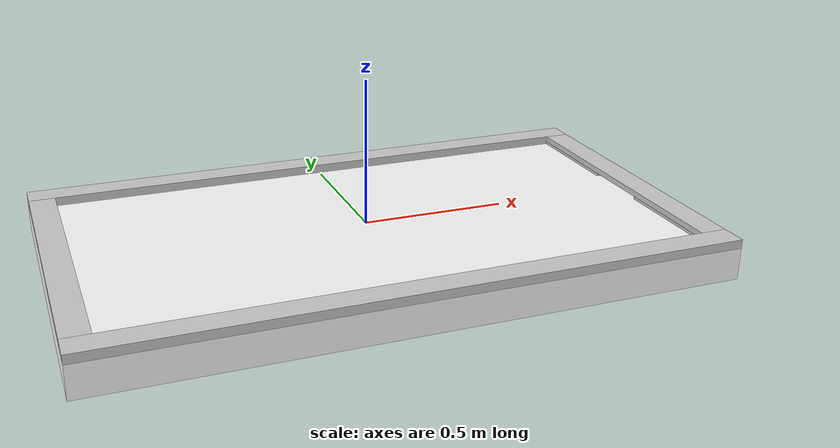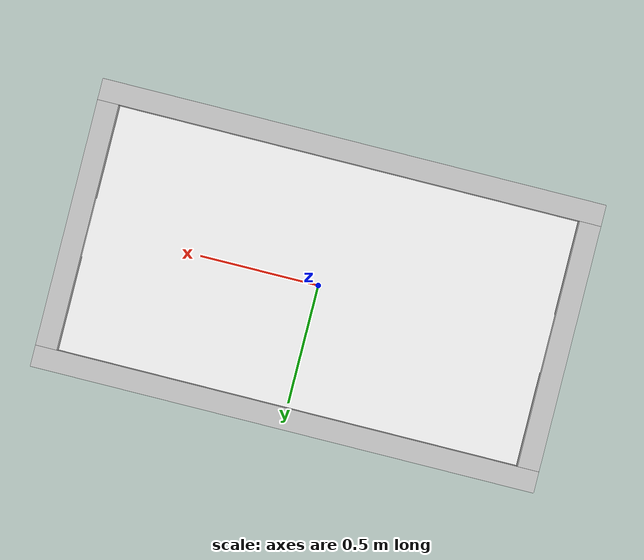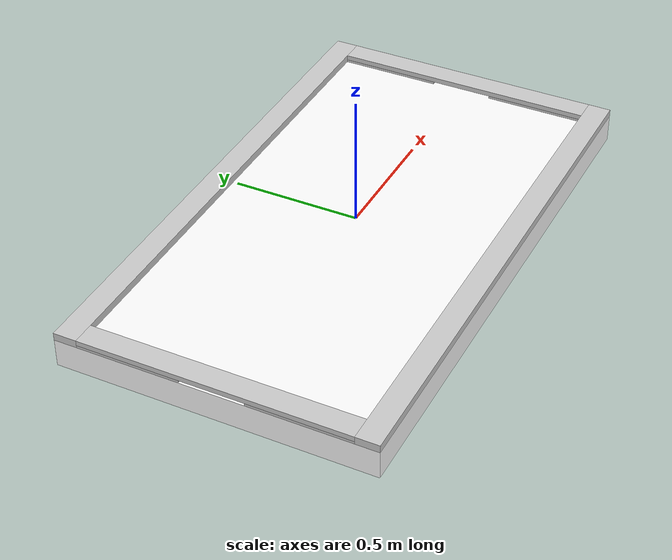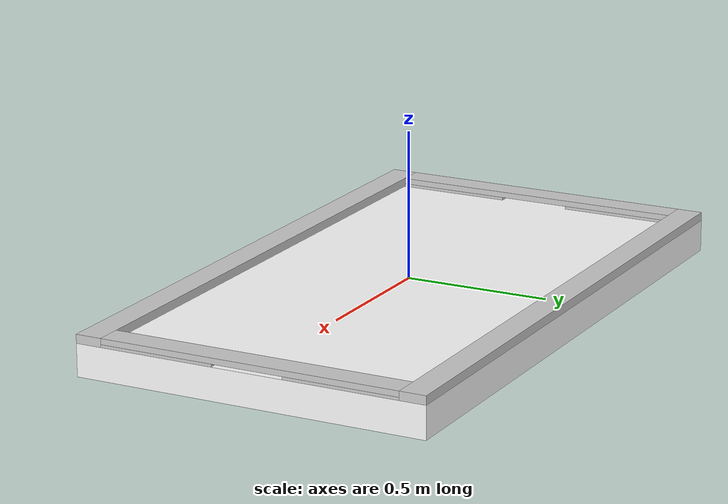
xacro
<?xml version="1.0" encoding="utf-8"?>
<robot name="air_hockey_table" xmlns:xacro="http://www.ros.org/wiki/xacro">
    <material name="grey">
        <color rgba="0.8 0.8 0.8 1"/>
    </material>
    <material name="white">
        <color rgba="1.0 1.0 1.0 1"/>
    </material>
    <material name="red">
        <color rgba="1.0 0.0 0.0 1"/>
    </material>

    <xacro:arg name="parent" default="Table"/>
    <xacro:arg name="collide_bitmask" default="0x01"/>
    <xacro:arg name="restitution_longitude" default="0.742386791998004"/>
    <xacro:arg name="restitution_latitude" default="0.742386791998004"/>
    <xacro:arg name="lateral_friction_rim" default="0.14175473462785318"/>
    <xacro:arg name="lateral_friction_surface" default="0.0001"/>

    <xacro:property name="M_PI" value="3.1415926535897931"/>
    <xacro:property name="table_base_length" value="2.128"/>
    <xacro:property name="table_base_width" value="1.218"/>
    <xacro:property name="table_base_height" value="0.11"/>
    <xacro:property name="table_rim_horizon_length" value="0.09"/>
    <xacro:property name="table_rim_horizon_width" value="0.396"/>
    <xacro:property name="table_rim_horizon_height" value="0.01"/>
    <xacro:property name="table_rim_horizon_top_height" value="0.02"/>
    <xacro:property name="table_rim_vertical_length" value="2.128"/>
    <xacro:property name="table_rim_vertical_width" value="0.09"/>
    <xacro:property name="table_rim_vertical_height" value="0.03"/>

    <xacro:macro name="air_hockey_table" params="parent collide_bitmask restitution_longitude restitution_latitude
                                                 lateral_friction_rim lateral_friction_surface">
        <link name="${parent}"/>
        <joint name="base_joint" type="fixed">
            <origin xyz="0 0 ${-table_base_height/2}" rpy="0 0 0"/>
            <parent link="${parent}"/>
            <child link="t_base"/>
        </joint>
        <link name="t_base">
            <inertial>
                <origin xyz="0 0 0.0" rpy="0 0 0"/>
                <mass value="1"/>
                <inertia ixx="1" ixy="0" ixz="0" iyy="1" iyz="0" izz="1"/>
            </inertial>
            <visual>
                <origin xyz="0 0 0.0" rpy="0 0 0"/>
                <geometry>
                    <box size="${table_base_length} ${table_base_width} ${table_base_height}"/>
                </geometry>
                <material name="white"/>
            </visual>
            <collision>
                <origin xyz="0 0 0.0" rpy="0 0 0"/>
                <geometry>
                    <box size="${table_base_length} ${table_base_width} ${table_base_height}"/>
                </geometry>
            </collision>
            <contact>
                <restitution value="${restitution_longitude}"/>
                <lateral_friction value="${lateral_friction_surface}"/>
                <rolling_friction value="0.0"/>
                <spinning_friction value="0.0"/>
            </contact>
        </link>

        <joint name="base_home_joint" type="fixed">
            <origin xyz="-${table_base_length / 2 - table_rim_horizon_length} 0 0" rpy="0 0 0"/>
            <parent link="${parent}"/>
            <child link="TableHome"/>
        </joint>
        <link name="TableHome"/>

        <joint name="base_away_joint" type="fixed">
            <origin xyz="${table_base_length / 2 - table_rim_horizon_length} 0 0" rpy="0 0 ${M_PI}"/>
            <parent link="${parent}"/>
            <child link="TableAway"/>
        </joint>
        <link name="TableAway"/>

        <joint name="base_down_rim_l" type="fixed">
            <origin rpy="0.0 0.0 0.0" xyz="${(table_base_length - table_rim_horizon_length) / 2}
                                           ${table_base_width/2 - table_rim_vertical_width - table_rim_horizon_width / 2}
                                           ${(table_base_height + table_rim_horizon_height) / 2}"/>
            <parent link="t_base"/>
            <child link="t_down_rim_l"/>
            <preserveFixedJoint>true</preserveFixedJoint>
        </joint>
        <link name="t_down_rim_l">
            <inertial>
                <mass value="1.0"/>
                <inertia ixx="1" ixy="0" ixz="0" iyy="1" iyz="0" izz="1"/>
            </inertial>
            <visual>
                <geometry>
                    <box size="${table_rim_horizon_length} ${table_rim_horizon_width} ${table_rim_horizon_height}"/>
                </geometry>
                <material name="grey"/>
            </visual>
            <collision>
                <origin xyz="0.0 0.0 0.0"/>
                <geometry>
                    <box size="${table_rim_horizon_length} ${table_rim_horizon_width} ${table_rim_horizon_height + 0.1}"/>
                </geometry>
            </collision>
            <contact>
                <restitution value="${restitution_latitude}"/>
                <lateral_friction value="${lateral_friction_rim}"/>
                <rolling_friction value="0.0"/>
                <spinning_friction value="0.0"/>
            </contact>
        </link>

        <joint name="base_down_rim_r" type="fixed">
            <origin rpy="0.0 0.0 0.0" xyz="${(table_base_length - table_rim_horizon_length) / 2}
                                           -${table_base_width/2 - table_rim_vertical_width - table_rim_horizon_width / 2}
                                           ${(table_base_height + table_rim_horizon_height) / 2}"/>
            <parent link="t_base"/>
            <child link="t_down_rim_r"/>
            <preserveFixedJoint>true</preserveFixedJoint>
        </joint>
        <link name="t_down_rim_r">
            <inertial>
                <mass value="1.0"/>
                <inertia ixx="1" ixy="0" ixz="0" iyy="1" iyz="0" izz="1"/>
            </inertial>
            <visual>
                <geometry>
                    <box size="${table_rim_horizon_length} ${table_rim_horizon_width} ${table_rim_horizon_height}"/>
                </geometry>
                <material name="grey"/>
            </visual>
            <collision>
                <origin xyz="0.0 0.0 0.0"/>
                <geometry>
                    <box size="${table_rim_horizon_length} ${table_rim_horizon_width} ${table_rim_horizon_height + 0.1}"/>
                </geometry>
            </collision>
            <contact>
                <restitution value="${restitution_latitude}"/>
                <lateral_friction value="${lateral_friction_rim}"/>
                <rolling_friction value="0.0"/>
                <spinning_friction value="0.0"/>
            </contact>
        </link>

        <joint name="base_down_rim_top" type="fixed">
            <origin rpy="0.0 0.0 0.0" xyz="${(table_base_length - table_rim_horizon_length) / 2}
                                           0.0
                                           ${(table_base_height + table_rim_horizon_top_height) / 2 + table_rim_horizon_height}"/>
            <parent link="t_base"/>
            <child link="t_down_rim_top"/>
            <preserveFixedJoint>true</preserveFixedJoint>

        </joint>
        <link name="t_down_rim_top">
            <inertial>
                <mass value="1.0"/>
                <inertia ixx="1" ixy="0" ixz="0" iyy="1" iyz="0" izz="1"/>
            </inertial>
            <visual>
                <geometry>
                    <box size="${table_rim_horizon_length} ${table_base_width - 2 * table_rim_vertical_width} ${table_rim_horizon_top_height}"/>
                </geometry>
                <material name="grey"/>
            </visual>
            <contact>
                <restitution value="${restitution_latitude}"/>
                <lateral_friction value="${lateral_friction_rim}"/>
                <rolling_friction value="0.0"/>
                <spinning_friction value="0.0"/>
            </contact>
        </link>

        <joint name="base_up_rim_l" type="fixed">
            <origin rpy="0.0 0.0 0.0" xyz="-${(table_base_length - table_rim_horizon_length) / 2}
                                           ${table_base_width/2 - table_rim_vertical_width - table_rim_horizon_width / 2}
                                           ${(table_base_height + table_rim_horizon_height) / 2}"/>
            <parent link="t_base"/>
            <child link="t_up_rim_l"/>
            <preserveFixedJoint>true</preserveFixedJoint>
        </joint>
        <link name="t_up_rim_l">
            <inertial>
                <mass value="1.0"/>
                <inertia ixx="1" ixy="0" ixz="0" iyy="1" iyz="0" izz="1"/>
            </inertial>
            <visual>
                <geometry>
                    <box size="${table_rim_horizon_length} ${table_rim_horizon_width} ${table_rim_horizon_height}"/>
                </geometry>
                <material name="grey"/>
            </visual>
            <collision>
                <origin xyz="0.0 0.0 0.0"/>
                <geometry>
                    <box size="${table_rim_horizon_length} ${table_rim_horizon_width} ${table_rim_horizon_height + 0.1}"/>
                </geometry>
            </collision>
            <contact>
                <restitution value="${restitution_latitude}"/>
                <lateral_friction value="${lateral_friction_rim}"/>
                <rolling_friction value="0.0"/>
                <spinning_friction value="0.0"/>
            </contact>
        </link>

        <joint name="base_up_rim_r" type="fixed">
            <origin rpy="0.0 0.0 0.0" xyz="-${(table_base_length - table_rim_horizon_length) / 2}
                                           -${table_base_width/2 - table_rim_vertical_width - table_rim_horizon_width / 2}
                                           ${(table_base_height + table_rim_horizon_height) / 2}"/>
            <parent link="t_base"/>
            <child link="t_up_rim_r"/>
            <preserveFixedJoint>true</preserveFixedJoint>
        </joint>
        <link name="t_up_rim_r">
            <inertial>
                <mass value="1.0"/>
                <inertia ixx="1" ixy="0" ixz="0" iyy="1" iyz="0" izz="1"/>
            </inertial>
            <visual>
                <geometry>
                    <box size="${table_rim_horizon_length} ${table_rim_horizon_width} ${table_rim_horizon_height}"/>
                </geometry>
                <material name="grey"/>
            </visual>
            <collision>
                <origin xyz="0.0 0.0 0.0"/>
                <geometry>
                    <box size="${table_rim_horizon_length} ${table_rim_horizon_width} ${table_rim_horizon_height + 0.1}"/>
                </geometry>
            </collision>
            <contact>
                <restitution value="${restitution_latitude}"/>
                <lateral_friction value="${lateral_friction_rim}"/>
                <rolling_friction value="0.0"/>
                <spinning_friction value="0.0"/>
            </contact>
        </link>

        <joint name="base_up_rim_top" type="fixed">
            <origin rpy="0.0 0.0 0.0" xyz="-${(table_base_length - table_rim_horizon_length) / 2}
                                           0.0
                                           ${(table_base_height + table_rim_horizon_top_height) / 2 + table_rim_horizon_height}"/>
            <parent link="t_base"/>
            <child link="t_up_rim_top"/>
            <preserveFixedJoint>true</preserveFixedJoint>
        </joint>
        <link name="t_up_rim_top">
            <inertial>
                <mass value="1.0"/>
                <inertia ixx="1" ixy="0" ixz="0" iyy="1" iyz="0" izz="1"/>
            </inertial>
            <visual>
                <geometry>
                    <box size="${table_rim_horizon_length} ${table_base_width - 2 * table_rim_vertical_width} ${table_rim_horizon_top_height}"/>
                </geometry>
                <material name="grey"/>
            </visual>
            <contact>
                <restitution value="${restitution_latitude}"/>
                <lateral_friction value="${lateral_friction_rim}"/>
                <rolling_friction value="0.0"/>
                <spinning_friction value="0.0"/>
            </contact>
        </link>

        <joint name="base_left_rim" type="fixed">
            <origin rpy="0.0 0.0 0.0" xyz="0.0
                                           ${(table_base_width - table_rim_vertical_width) / 2}
                                           ${(table_base_height + table_rim_vertical_height) / 2}"/>
            <parent link="t_base"/>
            <child link="t_left_rim"/>
            <preserveFixedJoint>true</preserveFixedJoint>
        </joint>
        <link name="t_left_rim">
            <inertial>
                <mass value="1.0"/>
                <inertia ixx="1" ixy="0" ixz="0" iyy="1" iyz="0" izz="1"/>
            </inertial>
            <visual>
                <geometry>
                    <box size="${table_rim_vertical_length} ${table_rim_vertical_width} ${table_rim_vertical_height}"/>
                </geometry>
                <material name="grey"/>
            </visual>
            <collision>
                <origin xyz="0.0 0.0 0.0"/>
                <geometry>
                    <box size="${table_rim_vertical_length} ${table_rim_vertical_width} ${table_rim_vertical_height + 0.1}"/>
                </geometry>
            </collision>
            <contact>
                <restitution value="${restitution_longitude}"/>
                <lateral_friction value="${lateral_friction_rim}"/>
                <rolling_friction value="0.0"/>
                <spinning_friction value="0.0"/>
            </contact>
        </link>

        <joint name="base_right_rim" type="fixed">
            <origin rpy="0.0 0.0 0.0" xyz="0.0
                                           -${(table_base_width - table_rim_vertical_width) / 2}
                                           ${(table_base_height + table_rim_vertical_height) / 2}"/>
            <parent link="t_base"/>
            <child link="t_right_rim"/>
            <preserveFixedJoint>true</preserveFixedJoint>
        </joint>
        <link name="t_right_rim">
            <inertial>
                <mass value="1.0"/>
                <inertia ixx="1" ixy="0" ixz="0" iyy="1" iyz="0" izz="1"/>
            </inertial>
            <visual>
                <geometry>
                    <box size="${table_rim_vertical_length} ${table_rim_vertical_width} ${table_rim_vertical_height}"/>
                </geometry>
                <material name="grey"/>
            </visual>
            <collision>
                <origin xyz="0.0 0.0 0.0"/>
                <geometry>
                    <box size="${table_rim_vertical_length} ${table_rim_vertical_width} ${table_rim_vertical_height + 0.1}"/>
                </geometry>
            </collision>
            <contact>
                <restitution value="${restitution_longitude}"/>
                <lateral_friction value="${lateral_friction_rim}"/>
                <rolling_friction value="0.0"/>
                <spinning_friction value="0.0"/>
            </contact>
        </link>

        <gazebo reference="t_base">
            <collision>
                <surface>
                    <bounce>
                        <restitution_coefficient>${restitution_longitude}</restitution_coefficient>
                        <threshold>0</threshold>
                    </bounce>
                    <friction>
                        <!-- For Gazebo Must contain tag ode, mu, mu2, check https://github.com/osrf/sdformat/issues/31 -->
                        <!-- https://github.com/osrf/gazebo/blob/gazebo11/gazebo/physics/bullet/BulletSurfaceParams.cc -->
                        <ode>
                            <mu>${lateral_friction_surface}</mu>
                            <mu2>${lateral_friction_surface}</mu2>
                        </ode>
                    </friction>
                    <contact>
                        <collide_bitmask>${collide_bitmask}</collide_bitmask>
                        <ode>
                            <max_vel>10</max_vel>
                        </ode>
                    </contact>
                </surface>
            </collision>
            <material>Gazebo/White</material>
        </gazebo>

        <gazebo reference="base_down_rim_l">
            <preserveFixedJoint>1</preserveFixedJoint>
        </gazebo>
        <gazebo reference="t_down_rim_l">
            <collision>
                <surface>
                    <bounce>
                        <restitution_coefficient>${restitution_latitude}</restitution_coefficient>
                        <threshold>0</threshold>
                    </bounce>
                    <friction>
                        <!-- For Gazebo Must contain tag ode, mu, mu2, check https://github.com/osrf/sdformat/issues/31 -->
                        <!-- https://github.com/osrf/gazebo/blob/gazebo11/gazebo/physics/bullet/BulletSurfaceParams.cc -->
                        <ode>
                            <mu>${lateral_friction_rim}</mu>
                            <mu2>${lateral_friction_rim}</mu2>
                        </ode>
                    </friction>
                    <contact>
                        <collide_bitmask>${collide_bitmask}</collide_bitmask>
                        <ode>
                            <max_vel>10</max_vel>
                        </ode>
                    </contact>
                </surface>
            </collision>
            <material>Gazebo/Grey</material>
        </gazebo>

        <gazebo reference="base_down_rim_r">
            <preserveFixedJoint>1</preserveFixedJoint>
        </gazebo>
        <gazebo reference="t_down_rim_r">
            <collision>
                <surface>
                    <bounce>
                        <restitution_coefficient>${restitution_latitude}</restitution_coefficient>
                        <threshold>0</threshold>
                    </bounce>
                    <friction>
                        <!-- For Gazebo Must contain tag ode, mu, mu2, check https://github.com/osrf/sdformat/issues/31 -->
                        <!-- https://github.com/osrf/gazebo/blob/gazebo11/gazebo/physics/bullet/BulletSurfaceParams.cc -->
                        <ode>
                            <mu>${lateral_friction_rim}</mu>
                            <mu2>${lateral_friction_rim}</mu2>
                        </ode>
                    </friction>
                    <contact>
                        <collide_bitmask>${collide_bitmask}</collide_bitmask>
                        <ode>
                            <max_vel>10</max_vel>
                        </ode>
                    </contact>
                </surface>
            </collision>
            <material>Gazebo/Grey</material>
        </gazebo>

        <gazebo reference="base_down_rim_top">
            <preserveFixedJoint>1</preserveFixedJoint>
        </gazebo>
        <gazebo reference="t_down_rim_top">
<!--                        &lt;!&ndash; For Gazebo Must contain tag ode, mu, mu2, check https://github.com/osrf/sdformat/issues/31 &ndash;&gt;-->
<!--                        &lt;!&ndash; https://github.com/osrf/gazebo/blob/gazebo11/gazebo/physics/bullet/BulletSurfaceParams.cc &ndash;&gt;-->
            <material>Gazebo/Grey</material>
        </gazebo>

        <gazebo reference="base_up_rim_l">
            <preserveFixedJoint>1</preserveFixedJoint>
        </gazebo>
        <gazebo reference="t_up_rim_l">
            <collision>
                <surface>
                    <bounce>
                        <restitution_coefficient>${restitution_latitude}</restitution_coefficient>
                        <threshold>0</threshold>
                    </bounce>
                    <friction>
                        <!-- For Gazebo Must contain tag ode, mu, mu2, check https://github.com/osrf/sdformat/issues/31 -->
                        <!-- https://github.com/osrf/gazebo/blob/gazebo11/gazebo/physics/bullet/BulletSurfaceParams.cc -->
                        <ode>
                            <mu>${lateral_friction_rim}</mu>
                            <mu2>${lateral_friction_rim}</mu2>
                        </ode>
                    </friction>
                    <contact>
                        <collide_bitmask>${collide_bitmask}</collide_bitmask>
                        <ode>
                            <max_vel>10</max_vel>
                        </ode>
                    </contact>
                </surface>
            </collision>
            <material>Gazebo/Grey</material>
        </gazebo>

        <gazebo reference="base_up_rim_r">
            <preserveFixedJoint>1</preserveFixedJoint>
        </gazebo>
        <gazebo reference="t_up_rim_r">
            <collision>
                <surface>
                    <bounce>
                        <restitution_coefficient>${restitution_latitude}</restitution_coefficient>
                        <threshold>0</threshold>
                    </bounce>
                    <friction>
                        <!-- For Gazebo Must contain tag ode, mu, mu2, check https://github.com/osrf/sdformat/issues/31 -->
                        <!-- https://github.com/osrf/gazebo/blob/gazebo11/gazebo/physics/bullet/BulletSurfaceParams.cc -->
                        <ode>
                            <mu>${lateral_friction_rim}</mu>
                            <mu2>${lateral_friction_rim}</mu2>
                        </ode>
                    </friction>
                    <contact>
                        <collide_bitmask>${collide_bitmask}</collide_bitmask>
                        <ode>
                            <max_vel>10</max_vel>
                        </ode>
                    </contact>
                </surface>
            </collision>
            <material>Gazebo/Grey</material>
        </gazebo>

        <gazebo reference="base_up_rim_top">
            <preserveFixedJoint>1</preserveFixedJoint>
        </gazebo>
        <gazebo reference="t_up_rim_top">
<!--                        &lt;!&ndash; For Gazebo Must contain tag ode, mu, mu2, check https://github.com/osrf/sdformat/issues/31 &ndash;&gt;-->
<!--                        &lt;!&ndash; https://github.com/osrf/gazebo/blob/gazebo11/gazebo/physics/bullet/BulletSurfaceParams.cc &ndash;&gt;-->
            <material>Gazebo/Grey</material>
        </gazebo>

        <gazebo reference="base_left_rim">
            <preserveFixedJoint>1</preserveFixedJoint>
        </gazebo>
        <gazebo reference="t_left_rim">
            <collision>
                <surface>
                    <bounce>
                        <restitution_coefficient>${restitution_longitude}</restitution_coefficient>
                        <threshold>0</threshold>
                    </bounce>
                    <friction>
                        <!-- For Gazebo Must contain tag ode, mu, mu2, check https://github.com/osrf/sdformat/issues/31 -->
                        <!-- https://github.com/osrf/gazebo/blob/gazebo11/gazebo/physics/bullet/BulletSurfaceParams.cc -->
                        <ode>
                            <mu>${lateral_friction_rim}</mu>
                            <mu2>${lateral_friction_rim}</mu2>
                        </ode>
                    </friction>
                    <contact>
                        <collide_bitmask>${collide_bitmask}</collide_bitmask>
                        <ode>
                            <max_vel>10</max_vel>
                        </ode>
                    </contact>
                </surface>
            </collision>
            <material>Gazebo/Grey</material>
        </gazebo>

        <gazebo reference="base_right_rim">
            <preserveFixedJoint>1</preserveFixedJoint>
        </gazebo>
        <gazebo reference="t_right_rim">
            <collision>
                <surface>
                    <bounce>
                        <restitution_coefficient>${restitution_longitude}</restitution_coefficient>
                        <threshold>0</threshold>
                    </bounce>
                    <friction>
                        <!-- For Gazebo Must contain tag ode, mu, mu2, check https://github.com/osrf/sdformat/issues/31 -->
                        <!-- https://github.com/osrf/gazebo/blob/gazebo11/gazebo/physics/bullet/BulletSurfaceParams.cc -->
                        <ode>
                            <mu>${lateral_friction_rim}</mu>
                            <mu2>${lateral_friction_rim}</mu2>
                        </ode>
                    </friction>
                    <contact>
                        <collide_bitmask>${collide_bitmask}</collide_bitmask>
                        <ode>
                            <max_vel>10</max_vel>
                        </ode>
                    </contact>
                </surface>
            </collision>
            <material>Gazebo/Grey</material>
        </gazebo>

        <gazebo>
            <static>true</static>
        </gazebo>
    </xacro:macro>

    <xacro:air_hockey_table parent="$(arg parent)"
                            collide_bitmask="$(arg collide_bitmask)"
                            restitution_longitude="$(arg restitution_longitude)"
                            restitution_latitude="$(arg restitution_latitude)"
                            lateral_friction_rim="$(arg lateral_friction_rim)"
                            lateral_friction_surface="$(arg lateral_friction_surface)"/>
</robot>
